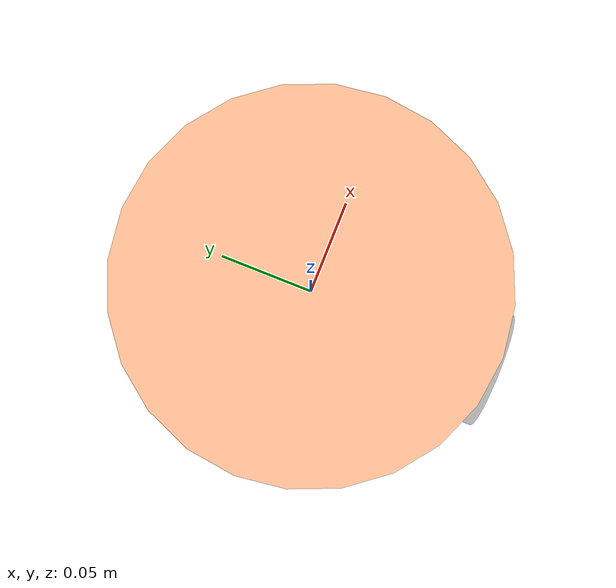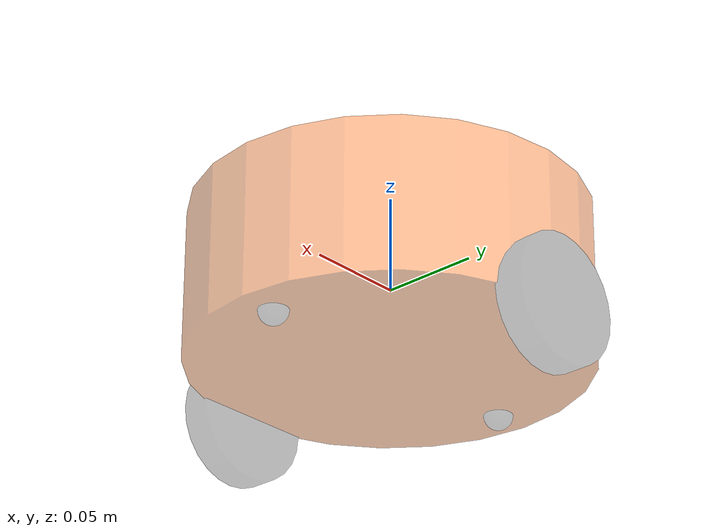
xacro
<robot name="mycar" xmlns:xacro="http://wiki.ros.org/xacro">

    <xacro:property name="base_radius" value="0.1" />
    <xacro:property name="base_length" value="0.08" />
    <link name="base_link">
        <visual>
            <geometry>
                <cylinder radius="0.1" length="0.08" />
            </geometry>

            <origin xyz="0 0 0" rpy="0 0 0" />

            <material name="baselink_color">
                <color rgba="1.0 0.5 0.2 0.5" />
            </material>
        </visual>

    </link>

    <xacro:property name="wheel_radius" value="0.0325" />
    <xacro:property name="wheel_length" value="0.015" />
    <xacro:property name="PI" value="3.1415927" />
    <xacro:property name="wheel_joint_z" value="-${base_length / 2}" />

    <xacro:macro name="wheel_func" params="wheel_name flag">

        <link name="${wheel_name}_wheel">
            <visual>
                <geometry>
                    <cylinder radius="${wheel_radius}" length="${wheel_length}" />
                </geometry>

                <origin xyz="0 0 0" rpy="${PI / 2} 0 0" />

                <material name="wheel_color">
                    <color rgba="0 0 0 0.3" />
                </material>
            </visual>

        </link>

        <joint name="${wheel_name}2link" type="continuous">
            <parent link="base_link"  />
            <child link="${wheel_name}_wheel" />

            <origin xyz="0 ${0.1 * flag} ${wheel_joint_z}" rpy="0 0 0" />
            <axis xyz="0 1 0" />
        </joint>

    </xacro:macro>

    <xacro:wheel_func wheel_name="left" flag="1" />
    <xacro:wheel_func wheel_name="right" flag="-1" />

    <xacro:property name="small_wheel_radius" value="0.0075" />
    <xacro:property name="small_joint_z" value="-${base_length / 2}" />
    <xacro:macro name="small_wheel_func" params="small_wheel_name flag">
        <link name="${small_wheel_name}_wheel">
            <visual>
                <geometry>
                    <sphere radius="${small_wheel_radius}" />
                </geometry>

                <origin xyz="0 0 0" rpy="0 0 0" />

                <material name="wheel_color">
                    <color rgba="0 0 0 0.3" />
                </material>
            </visual>

        </link>

        <joint name="${small_wheel_name}2link" type="continuous">
            <parent link="base_link"  />
            <child link="${small_wheel_name}_wheel" />

            <origin xyz="${0.08 * flag} 0 ${small_joint_z}" rpy="0 0 0" />
            <axis xyz="0 1 0" />
        </joint>

    </xacro:macro >
    <xacro:small_wheel_func small_wheel_name="front" flag="1"/>
    <xacro:small_wheel_func small_wheel_name="back" flag="-1"/>

</robot>
